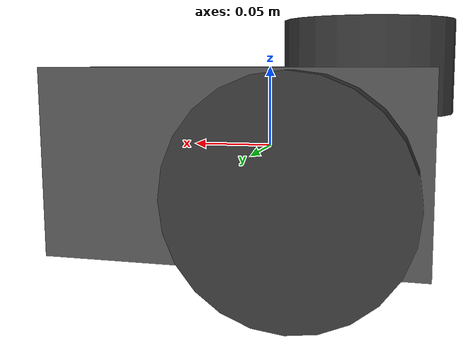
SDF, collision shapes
<?xml version="1.0" ?>
<sdf version="1.8">
  <model name="differential_bot">
  <pose>0.0 0.0 0.0 0.0 0.0 0.0</pose>

    <link name="base_footprint"/>

    <link name="base_link">

      <inertial>
        <pose>0 0 0 0 0 0</pose>
        <inertia>
          <ixx>4.2111447e-02</ixx>
          <ixy>0</ixy>
          <ixz>0</ixz>
          <iyy>4.2111447e-02</iyy>
          <iyz>0</iyz>
          <izz>7.5254874e-02</izz>
        </inertia>
        <mass>1.3729096e+00</mass>
      </inertial>

      <collision name="base_collision">
        <pose>0 0 0 0 0 0</pose>
        <geometry>
          <box>
            <size>0.200 0.200 0.100</size>
          </box>
        </geometry>
      </collision>

      <visual name="base_visual">
        <pose>0 0 0 0 0 0</pose>
        <geometry>
          <box>
            <size>0.200 0.200 0.100</size>
          </box>
        </geometry>
        <material>
          <ambient>0.3 0.3 0.3 1.0</ambient>
          <diffuse>0.3 0.3 0.3 1.0</diffuse>
        </material>
      </visual>
    </link>

    <link name="wheel_left_link">

      <inertial>
        <pose>-0.035 0.115 -0.011 1.57 0 0</pose>
        <inertia>
          <ixx>1.1175580e-05</ixx>
          <ixy>-4.2369783e-11</ixy>
          <ixz>-5.9381719e-09</ixz>
          <iyy>1.1192413e-05</iyy>
          <iyz>-1.4400107e-11</iyz>
          <izz>2.0712558e-05</izz>
        </inertia>
        <mass>0.1</mass>
      </inertial>

      <collision name="wheel_left_collision">
        <pose>-0.035 0.115 -0.011 1.57 0 0</pose>
        <geometry>
          <cylinder>
            <radius>0.060</radius>
            <length>0.020</length>
          </cylinder>
        </geometry>
        <surface>
          <friction>
            <ode>
              <mu>100000.0</mu>
              <mu2>100000.0</mu2>
              <fdir1>0 0 0</fdir1>
              <slip1>0.0</slip1>
              <slip2>0.0</slip2>
            </ode>
          </friction>
          <contact>
            <ode>
              <soft_cfm>0</soft_cfm>
              <soft_erp>0.2</soft_erp>
              <kp>1e+5</kp>
              <kd>1</kd>
              <max_vel>0.01</max_vel>
              <min_depth>0.001</min_depth>
            </ode>
          </contact>
        </surface>
      </collision>

      <visual name="wheel_left_visual">
        <pose>-0.035 0.115 -0.011 1.57 0 0</pose>
        <geometry>
          <cylinder>
            <radius>0.060</radius>
            <length>0.020</length>
          </cylinder>
        </geometry>
        <material>
          <ambient>0.2 0.2 0.2 1.0</ambient>
          <diffuse>0.2 0.2 0.2 1.0</diffuse>
        </material>
      </visual>
    </link>

    <link name="wheel_right_link">

      <inertial>
        <pose>-0.035 -0.115 -0.011 1.57 0 0</pose>
        <inertia>
          <ixx>1.1175580e-05</ixx>
          <ixy>-4.2369783e-11</ixy>
          <ixz>-5.9381719e-09</ixz>
          <iyy>1.1192413e-05</iyy>
          <iyz>-1.4400107e-11</iyz>
          <izz>2.0712558e-05</izz>
        </inertia>
        <mass>0.1</mass>
      </inertial>

      <collision name="wheel_right_collision">
        <pose>-0.035 -0.115 -0.011 1.57 0 0</pose>
        <geometry>
          <cylinder>
            <radius>0.060</radius>
            <length>0.020</length>
          </cylinder>
        </geometry>
        <surface>
          <friction>
            <ode>
              <mu>100000.0</mu>
              <mu2>100000.0</mu2>
              <fdir1>0 0 0</fdir1>
              <slip1>0.0</slip1>
              <slip2>0.0</slip2>
            </ode>
          </friction>
          <contact>
            <ode>
              <soft_cfm>0</soft_cfm>
              <soft_erp>0.2</soft_erp>
              <kp>1e+5</kp>
              <kd>1</kd>
              <max_vel>0.01</max_vel>
              <min_depth>0.001</min_depth>
            </ode>
          </contact>
        </surface>
      </collision>

      <visual name="wheel_right_visual">
        <pose>-0.035 -0.115 -0.011 1.57 0 0</pose>
        <geometry>
          <cylinder>
            <radius>0.060</radius>
            <length>0.020</length>
          </cylinder>
        </geometry>
        <material>
          <ambient>0.2 0.2 0.2 1.0</ambient>
          <diffuse>0.2 0.2 0.2 1.0</diffuse>
        </material>
      </visual>
    </link>

    <link name='castor_wheel'>
      <pose>0.061 0 -0.050 0 0 0</pose>
      <inertial>
        <mass>0.001</mass>
        <inertia>
          <ixx>0.00001</ixx>
          <ixy>0.000</ixy>
          <ixz>0.000</ixz>
          <iyy>0.00001</iyy>
          <iyz>0.000</iyz>
          <izz>0.00001</izz>
        </inertia>
      </inertial>
      <collision name='castor_collision'>
        <geometry>
          <sphere>
            <radius>0.021000</radius>
          </sphere>
        </geometry>
        <surface>
          <contact>
            <ode>
              <soft_cfm>0</soft_cfm>
              <soft_erp>0.2</soft_erp>
              <kp>1e+5</kp>
              <kd>1</kd>
              <max_vel>0.01</max_vel>
              <min_depth>0.001</min_depth>
            </ode>
          </contact>
        </surface>
      </collision>
      <visual name="castor_visual">
        <geometry>
          <sphere>
            <radius>0.021000</radius>
          </sphere>
        </geometry>
        <material>
          <ambient>0.2 0.2 0.2 1.0</ambient>
          <diffuse>0.2 0.2 0.2 1.0</diffuse>
        </material>
      </visual>
    </link>

    <link name="base_scan">
      <inertial>
      <pose>-0.061 0 0.050 0 0 0</pose>
        <inertia>
          <ixx>0.001</ixx>
          <ixy>0.000</ixy>
          <ixz>0.000</ixz>
          <iyy>0.001</iyy>
          <iyz>0.000</iyz>
          <izz>0.001</izz>
        </inertia>
        <mass>0.114</mass>
      </inertial>

      <collision name="lidar_sensor_collision">
      <pose>-0.061 0 0.050 0 0 0</pose>
        <geometry>
          <cylinder>
            <radius>0.0508</radius>
            <length>0.055</length>
          </cylinder>
        </geometry>
      </collision>

      <visual name="lidar_sensor_visual">
      <pose>-0.061 0 0.050 0 0 0</pose>
        <geometry>
          <mesh>
            <uri>model://turtlebot3_common/meshes/sensors/lds.stl</uri>
            <scale>0.001 0.001 0.001</scale>
          </mesh>
        </geometry>
        <material>
          <ambient>0.2 0.2 0.2 1.0</ambient>
          <diffuse>0.2 0.2 0.2 1.0</diffuse>
        </material>
      </visual>

      <sensor name="hls_lfcd_lds" type="gpu_lidar">
        <always_on>true</always_on>
        <visualize>true</visualize>
      <pose>-0.061 0 0.050 0 0 0</pose>
        <update_rate>10</update_rate>
        <topic>scan</topic>
        <gz_frame_id>base_scan</gz_frame_id>
        <lidar>
          <scan>
            <horizontal>
              <samples>360</samples>
              <resolution>1.000000</resolution>
              <min_angle>0.000000</min_angle>
              <max_angle>6.280000</max_angle>
            </horizontal>
          </scan>
          <range>
            <min>0.120000</min>
            <max>3.5</max>
            <resolution>0.015000</resolution>
          </range>
          <noise>
            <type>gaussian</type>
            <mean>0.0</mean>
            <stddev>0.01</stddev>
          </noise>
        </lidar>
      </sensor>
    </link>

    <link name="camera_link"/>

    <link name="camera_rgb_frame">
      <inertial>
        <pose>0.069 -0.047 0.107 0 0 0</pose>
        <inertia>
          <ixx>0.001</ixx>
          <ixy>0.000</ixy>
          <ixz>0.000</ixz>
          <iyy>0.001</iyy>
          <iyz>0.000</iyz>
          <izz>0.001</izz>
        </inertia>
        <mass>0.035</mass>
      </inertial>
      <sensor name="camera" type="camera">
        <always_on>true</always_on>
        <visualize>true</visualize>
        <update_rate>30</update_rate>
        <topic>camera/image_raw</topic>
        <gz_frame_id>camera_rgb_frame</gz_frame_id>
        <camera name="intel_realsense_r200">
          <camera_info_topic>camera/camera_info</camera_info_topic>
          <horizontal_fov>1.02974</horizontal_fov>
          <image>
            <width>1920</width>
            <height>1080</height>
            <format>R8G8B8</format>
          </image>
          <clip>
            <near>0.02</near>
            <far>300</far>
          </clip>
          <noise>
            <type>gaussian</type>
            <mean>0.0</mean>
            <stddev>0.007</stddev>
          </noise>
        </camera>
      </sensor>
    </link>

    <joint name="base_joint" type="fixed">
      <parent>base_footprint</parent>
      <child>base_link</child>
      <pose>0.0 0.0 0.010 0 0 0</pose>
    </joint>

    <joint name="wheel_left_joint" type="revolute">
      <parent>base_link</parent>
      <child>wheel_left_link</child>
      <pose>-0.035 0.115 -0.011 0 0 0</pose>
      <axis>
        <xyz>0 1 0</xyz>
        <limit>
          <effort>20</effort>
        </limit>
      </axis>
    </joint>

    <joint name="wheel_right_joint" type="revolute">
      <parent>base_link</parent>
      <child>wheel_right_link</child>
      <pose>-0.035 -0.115 -0.011 0 0 0</pose>
      <axis>
        <xyz>0 1 0</xyz>
        <limit>
          <effort>20</effort>
        </limit>
      </axis>
    </joint>

    <joint name='castor_joint' type='ball'>
      <parent>base_link</parent>
      <child>castor_wheel</child>
      <pose>0 0 0 0 0 0</pose>
    </joint>

    <joint name="scan_joint" type="fixed">
      <parent>base_link</parent>
      <child>base_scan</child>
      <pose>0 0 0 0 0 0</pose>
      <axis>
        <xyz>0 0 1</xyz>
      </axis>
    </joint>

    <joint name="camera_joint" type="fixed">
      <parent>base_link</parent>
      <child>camera_link</child>
      <pose>0.064 -0.065 0.050 0 0 0</pose>
      <axis>
        <xyz>0 0 1</xyz>
      </axis>
    </joint>

    <joint name="camera_rgb_joint" type="fixed">
      <parent>camera_link</parent>
      <child>camera_rgb_frame</child>
      <pose>0.005 0.018 0.013 0 0 0</pose>
      <axis>
        <xyz>0 0 1</xyz>
      </axis>
    </joint>

    <plugin filename="gz-sim-diff-drive-system" name="gz::sim::systems::DiffDrive">

       <!-- wheels -->
       <left_joint>wheel_left_joint</left_joint>
       <right_joint>wheel_right_joint</right_joint>

       <!-- kinematics -->
       <wheel_separation>0.230</wheel_separation>
       <wheel_radius>0.060</wheel_radius>

       <!-- limits -->
       <max_linear_acceleration>1.0</max_linear_acceleration>

       <topic>cmd_vel</topic>

       <odom_topic>odom</odom_topic>
       <frame_id>odom</frame_id>
       <child_frame_id>base_footprint</child_frame_id>
       <odom_publisher_frequency>30</odom_publisher_frequency>

       <tf_topic>/tf</tf_topic>

    </plugin>

    <plugin filename="gz-sim-joint-state-publisher-system" name="gz::sim::systems::JointStatePublisher">
      <topic>joint_states</topic>
      <joint_name>wheel_left_joint</joint_name>
      <joint_name>wheel_right_joint</joint_name>
    </plugin>

  </model>
</sdf>
